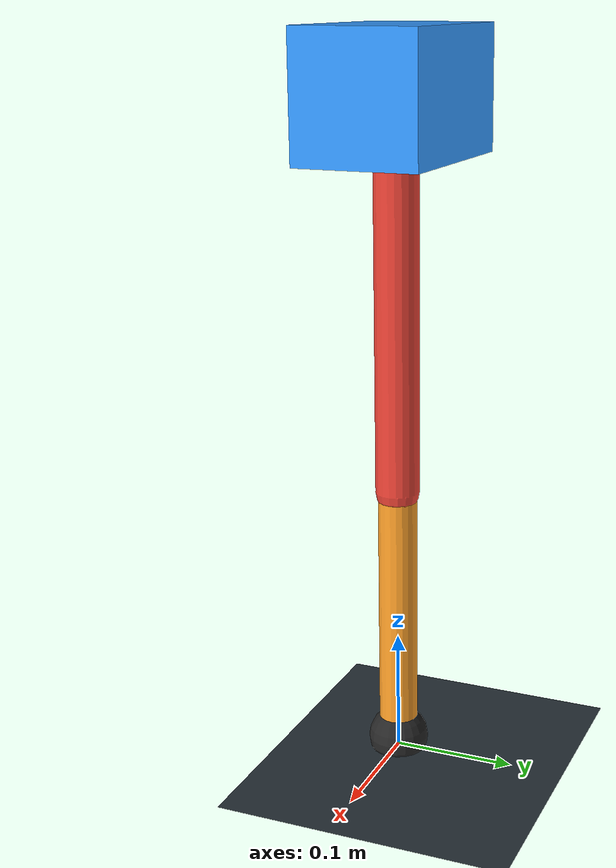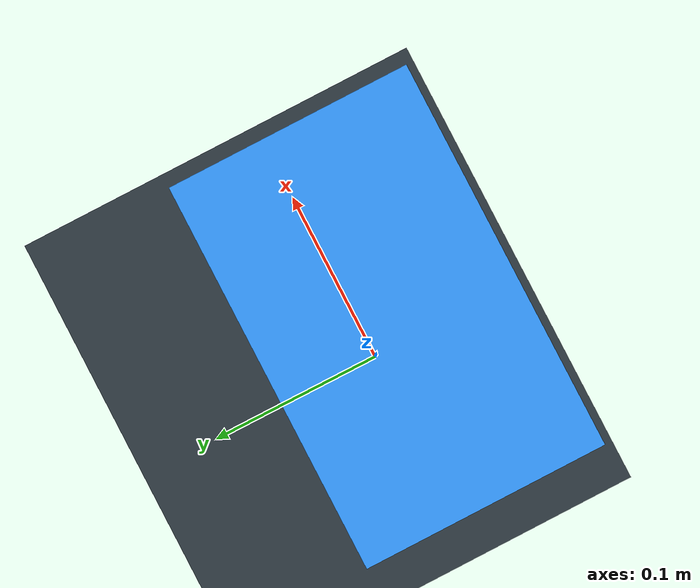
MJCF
<mujoco model="single_axis_two_bar">
  <compiler angle="radian" inertiafromgeom="true"/>
  <option timestep="0.001" integrator="implicitfast" gravity="0 0 -9.81"/>
  <default>
    <joint damping="0.08"/>
    <geom friction="1.2 0.01 0.0001" condim="3"/>
  </default>
  <worldbody>
    <geom name="floor" type="plane" size="5 5 0.1" rgba="0.18 0.22 0.25 1"/>
    <body name="carriage" pos="0 0 0.5465827614297497">
      <joint name="pole_slide" type="slide" axis="0 0 1"/>
      <geom name="payload" type="box" size="0.08 0.05 0.05" mass="3.015028770979901" rgba="0.2 0.6 1 1"/>
      <body name="thigh" pos="0 0 0">
        <joint name="hip" type="hinge" axis="0 1 0"/>
        <geom name="thigh_link" type="capsule" fromto="0 0 0 0 0 -0.3177287866730968" size="0.018" mass="0.226385958920078" rgba="0.9 0.25 0.2 1"/>
        <body name="shank" pos="0 0 -0.3177287866730968">
          <joint name="knee" type="hinge" axis="0 1 0"/>
          <geom name="shank_link" type="capsule" fromto="0 0 0 0 0 -0.21998540036788228" size="0.016" mass="0.1567425046127153" rgba="0.95 0.6 0.15 1"/>
          <geom name="foot" type="sphere" pos="0 0 -0.21998540036788228" size="0.025" mass="0.03" rgba="0.15 0.15 0.15 1"/>
          <site name="toe" pos="0 0 -0.21998540036788228" size="0.008"/>
        </body>
      </body>
    </body>
  </worldbody>
  <actuator>
    <motor name="hip_motor" joint="hip" ctrlrange="-49.387166766044494 49.387166766044494"/>
    <motor name="knee_motor" joint="knee" ctrlrange="-27.942375356843964 27.942375356843964"/>
  </actuator>
</mujoco>
